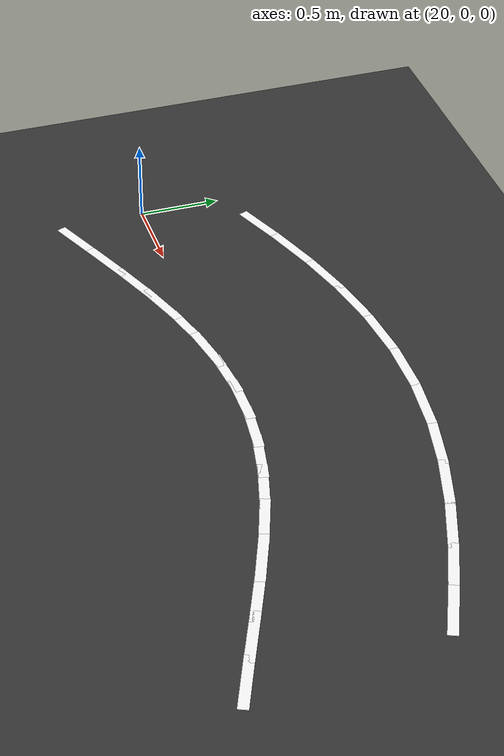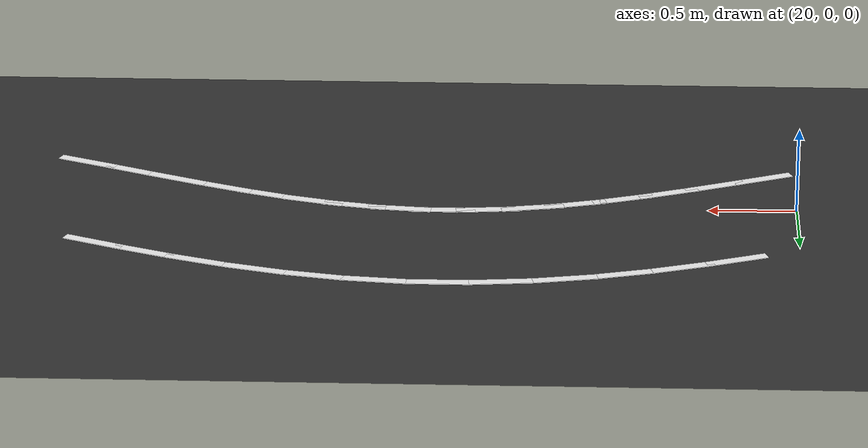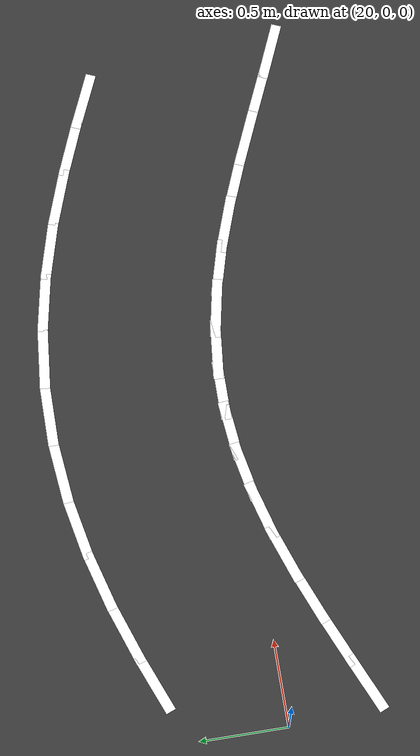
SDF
<sdf version="1.7">
 <world name="cone_lane">
  <model name="ground_plane">
   <static>true</static>
   <link name="link">
    <collision name="collision">
     <geometry><plane><normal>0 0 1</normal><size>150 150</size></plane></geometry>
     <surface><friction><ode><mu>1.0</mu></ode></friction></surface>
    </collision>
    <visual name="visual">
     <geometry><plane><normal>0 0 1</normal><size>100 100</size></plane></geometry>
     <material>
      <ambient>0.16 0.16 0.16 1</ambient>
      <diffuse>0.20 0.20 0.20 1</diffuse>
      <specular>0.02 0.02 0.02 1</specular>
     </material>
    </visual>
   </link>
  </model>
  <model name="line_L072">
   <static>true</static>
   <pose>20.357 0.692 0.0030 0 0 0.3750</pose>
   <link name="link">
    <visual name="v">
     <geometry><box><size>0.360 0.060 0.005</size></box></geometry>
     <material>
      <ambient>0.85 0.85 0.85 1</ambient>
      <diffuse>0.95 0.95 0.95 1</diffuse>
      <specular>0.1 0.1 0.1 1</specular>
     </material>
    </visual>
   </link>
  </model>
  <model name="line_L073">
   <static>true</static>
   <pose>20.657 0.803 0.0030 0 0 0.3326</pose>
   <link name="link">
    <visual name="v">
     <geometry><box><size>0.360 0.060 0.005</size></box></geometry>
     <material>
      <ambient>0.85 0.85 0.85 1</ambient>
      <diffuse>0.95 0.95 0.95 1</diffuse>
      <specular>0.1 0.1 0.1 1</specular>
     </material>
    </visual>
   </link>
  </model>
  <model name="line_L074">
   <static>true</static>
   <pose>20.987 0.906 0.0030 0 0 0.2687</pose>
   <link name="link">
    <visual name="v">
     <geometry><box><size>0.360 0.060 0.005</size></box></geometry>
     <material>
      <ambient>0.85 0.85 0.85 1</ambient>
      <diffuse>0.95 0.95 0.95 1</diffuse>
      <specular>0.1 0.1 0.1 1</specular>
     </material>
    </visual>
   </link>
  </model>
  <model name="line_L075">
   <static>true</static>
   <pose>21.304 0.981 0.0030 0 0 0.1936</pose>
   <link name="link">
    <visual name="v">
     <geometry><box><size>0.360 0.060 0.005</size></box></geometry>
     <material>
      <ambient>0.85 0.85 0.85 1</ambient>
      <diffuse>0.95 0.95 0.95 1</diffuse>
      <specular>0.1 0.1 0.1 1</specular>
     </material>
    </visual>
   </link>
  </model>
  <model name="line_L076">
   <static>true</static>
   <pose>21.650 1.032 0.0030 0 0 0.1005</pose>
   <link name="link">
    <visual name="v">
     <geometry><box><size>0.360 0.060 0.005</size></box></geometry>
     <material>
      <ambient>0.85 0.85 0.85 1</ambient>
      <diffuse>0.95 0.95 0.95 1</diffuse>
      <specular>0.1 0.1 0.1 1</specular>
     </material>
    </visual>
   </link>
  </model>
  <model name="line_L077">
   <static>true</static>
   <pose>22.000 1.050 0.0030 0 0 0.0000</pose>
   <link name="link">
    <visual name="v">
     <geometry><box><size>0.360 0.060 0.005</size></box></geometry>
     <material>
      <ambient>0.85 0.85 0.85 1</ambient>
      <diffuse>0.95 0.95 0.95 1</diffuse>
      <specular>0.1 0.1 0.1 1</specular>
     </material>
    </visual>
   </link>
  </model>
  <model name="line_L078">
   <static>true</static>
   <pose>22.350 1.032 0.0030 0 0 -0.1005</pose>
   <link name="link">
    <visual name="v">
     <geometry><box><size>0.360 0.060 0.005</size></box></geometry>
     <material>
      <ambient>0.85 0.85 0.85 1</ambient>
      <diffuse>0.95 0.95 0.95 1</diffuse>
      <specular>0.1 0.1 0.1 1</specular>
     </material>
    </visual>
   </link>
  </model>
  <model name="line_L079">
   <static>true</static>
   <pose>22.696 0.981 0.0030 0 0 -0.1936</pose>
   <link name="link">
    <visual name="v">
     <geometry><box><size>0.360 0.060 0.005</size></box></geometry>
     <material>
      <ambient>0.85 0.85 0.85 1</ambient>
      <diffuse>0.95 0.95 0.95 1</diffuse>
      <specular>0.1 0.1 0.1 1</specular>
     </material>
    </visual>
   </link>
  </model>
  <model name="line_L080">
   <static>true</static>
   <pose>23.013 0.906 0.0030 0 0 -0.2687</pose>
   <link name="link">
    <visual name="v">
     <geometry><box><size>0.360 0.060 0.005</size></box></geometry>
     <material>
      <ambient>0.85 0.85 0.85 1</ambient>
      <diffuse>0.95 0.95 0.95 1</diffuse>
      <specular>0.1 0.1 0.1 1</specular>
     </material>
    </visual>
   </link>
  </model>
  <model name="line_L081">
   <static>true</static>
   <pose>23.343 0.803 0.0030 0 0 -0.3326</pose>
   <link name="link">
    <visual name="v">
     <geometry><box><size>0.360 0.060 0.005</size></box></geometry>
     <material>
      <ambient>0.85 0.85 0.85 1</ambient>
      <diffuse>0.95 0.95 0.95 1</diffuse>
      <specular>0.1 0.1 0.1 1</specular>
     </material>
    </visual>
   </link>
  </model>
  <model name="line_L082">
   <static>true</static>
   <pose>23.643 0.692 0.0030 0 0 -0.3750</pose>
   <link name="link">
    <visual name="v">
     <geometry><box><size>0.360 0.060 0.005</size></box></geometry>
     <material>
      <ambient>0.85 0.85 0.85 1</ambient>
      <diffuse>0.95 0.95 0.95 1</diffuse>
      <specular>0.1 0.1 0.1 1</specular>
     </material>
    </visual>
   </link>
  </model>
  <model name="line_L083">
   <static>true</static>
   <pose>23.935 0.572 0.0030 0 0 -0.4002</pose>
   <link name="link">
    <visual name="v">
     <geometry><box><size>0.360 0.060 0.005</size></box></geometry>
     <material>
      <ambient>0.85 0.85 0.85 1</ambient>
      <diffuse>0.95 0.95 0.95 1</diffuse>
      <specular>0.1 0.1 0.1 1</specular>
     </material>
    </visual>
   </link>
  </model>
  <model name="line_R070">
   <static>true</static>
   <pose>20.178 -0.468 0.0030 0 0 0.4077</pose>
   <link name="link">
    <visual name="v">
     <geometry><box><size>0.360 0.060 0.005</size></box></geometry>
     <material>
      <ambient>0.85 0.85 0.85 1</ambient>
      <diffuse>0.95 0.95 0.95 1</diffuse>
      <specular>0.1 0.1 0.1 1</specular>
     </material>
    </visual>
   </link>
  </model>
  <model name="line_R071">
   <static>true</static>
   <pose>20.455 -0.349 0.0030 0 0 0.4002</pose>
   <link name="link">
    <visual name="v">
     <geometry><box><size>0.360 0.060 0.005</size></box></geometry>
     <material>
      <ambient>0.85 0.85 0.85 1</ambient>
      <diffuse>0.95 0.95 0.95 1</diffuse>
      <specular>0.1 0.1 0.1 1</specular>
     </material>
    </visual>
   </link>
  </model>
  <model name="line_R072">
   <static>true</static>
   <pose>20.723 -0.239 0.0030 0 0 0.3750</pose>
   <link name="link">
    <visual name="v">
     <geometry><box><size>0.360 0.060 0.005</size></box></geometry>
     <material>
      <ambient>0.85 0.85 0.85 1</ambient>
      <diffuse>0.95 0.95 0.95 1</diffuse>
      <specular>0.1 0.1 0.1 1</specular>
     </material>
    </visual>
   </link>
  </model>
  <model name="line_R073">
   <static>true</static>
   <pose>20.983 -0.142 0.0030 0 0 0.3326</pose>
   <link name="link">
    <visual name="v">
     <geometry><box><size>0.360 0.060 0.005</size></box></geometry>
     <material>
      <ambient>0.85 0.85 0.85 1</ambient>
      <diffuse>0.95 0.95 0.95 1</diffuse>
      <specular>0.1 0.1 0.1 1</specular>
     </material>
    </visual>
   </link>
  </model>
  <model name="line_R074">
   <static>true</static>
   <pose>21.253 -0.058 0.0030 0 0 0.2687</pose>
   <link name="link">
    <visual name="v">
     <geometry><box><size>0.360 0.060 0.005</size></box></geometry>
     <material>
      <ambient>0.85 0.85 0.85 1</ambient>
      <diffuse>0.95 0.95 0.95 1</diffuse>
      <specular>0.1 0.1 0.1 1</specular>
     </material>
    </visual>
   </link>
  </model>
  <model name="line_R075">
   <static>true</static>
   <pose>21.496 -0.001 0.0030 0 0 0.1936</pose>
   <link name="link">
    <visual name="v">
     <geometry><box><size>0.360 0.060 0.005</size></box></geometry>
     <material>
      <ambient>0.85 0.85 0.85 1</ambient>
      <diffuse>0.95 0.95 0.95 1</diffuse>
      <specular>0.1 0.1 0.1 1</specular>
     </material>
    </visual>
   </link>
  </model>
  <model name="line_R076">
   <static>true</static>
   <pose>21.750 0.037 0.0030 0 0 0.1005</pose>
   <link name="link">
    <visual name="v">
     <geometry><box><size>0.360 0.060 0.005</size></box></geometry>
     <material>
      <ambient>0.85 0.85 0.85 1</ambient>
      <diffuse>0.95 0.95 0.95 1</diffuse>
      <specular>0.1 0.1 0.1 1</specular>
     </material>
    </visual>
   </link>
  </model>
  <model name="line_R077">
   <static>true</static>
   <pose>22.000 0.050 0.0030 0 0 0.0000</pose>
   <link name="link">
    <visual name="v">
     <geometry><box><size>0.360 0.060 0.005</size></box></geometry>
     <material>
      <ambient>0.85 0.85 0.85 1</ambient>
      <diffuse>0.95 0.95 0.95 1</diffuse>
      <specular>0.1 0.1 0.1 1</specular>
     </material>
    </visual>
   </link>
  </model>
  <model name="line_R078">
   <static>true</static>
   <pose>22.250 0.037 0.0030 0 0 -0.1005</pose>
   <link name="link">
    <visual name="v">
     <geometry><box><size>0.360 0.060 0.005</size></box></geometry>
     <material>
      <ambient>0.85 0.85 0.85 1</ambient>
      <diffuse>0.95 0.95 0.95 1</diffuse>
      <specular>0.1 0.1 0.1 1</specular>
     </material>
    </visual>
   </link>
  </model>
  <model name="line_R079">
   <static>true</static>
   <pose>22.504 -0.001 0.0030 0 0 -0.1936</pose>
   <link name="link">
    <visual name="v">
     <geometry><box><size>0.360 0.060 0.005</size></box></geometry>
     <material>
      <ambient>0.85 0.85 0.85 1</ambient>
      <diffuse>0.95 0.95 0.95 1</diffuse>
      <specular>0.1 0.1 0.1 1</specular>
     </material>
    </visual>
   </link>
  </model>
  <model name="line_R080">
   <static>true</static>
   <pose>22.747 -0.058 0.0030 0 0 -0.2687</pose>
   <link name="link">
    <visual name="v">
     <geometry><box><size>0.360 0.060 0.005</size></box></geometry>
     <material>
      <ambient>0.85 0.85 0.85 1</ambient>
      <diffuse>0.95 0.95 0.95 1</diffuse>
      <specular>0.1 0.1 0.1 1</specular>
     </material>
    </visual>
   </link>
  </model>
  <model name="line_R081">
   <static>true</static>
   <pose>23.017 -0.142 0.0030 0 0 -0.3326</pose>
   <link name="link">
    <visual name="v">
     <geometry><box><size>0.360 0.060 0.005</size></box></geometry>
     <material>
      <ambient>0.85 0.85 0.85 1</ambient>
      <diffuse>0.95 0.95 0.95 1</diffuse>
      <specular>0.1 0.1 0.1 1</specular>
     </material>
    </visual>
   </link>
  </model>
  <model name="line_R082">
   <static>true</static>
   <pose>23.277 -0.239 0.0030 0 0 -0.3750</pose>
   <link name="link">
    <visual name="v">
     <geometry><box><size>0.360 0.060 0.005</size></box></geometry>
     <material>
      <ambient>0.85 0.85 0.85 1</ambient>
      <diffuse>0.95 0.95 0.95 1</diffuse>
      <specular>0.1 0.1 0.1 1</specular>
     </material>
    </visual>
   </link>
  </model>
  <model name="line_R083">
   <static>true</static>
   <pose>23.545 -0.349 0.0030 0 0 -0.4002</pose>
   <link name="link">
    <visual name="v">
     <geometry><box><size>0.360 0.060 0.005</size></box></geometry>
     <material>
      <ambient>0.85 0.85 0.85 1</ambient>
      <diffuse>0.95 0.95 0.95 1</diffuse>
      <specular>0.1 0.1 0.1 1</specular>
     </material>
    </visual>
   </link>
  </model>
  <model name="line_R084">
   <static>true</static>
   <pose>23.802 -0.459 0.0030 0 0 -0.4077</pose>
   <link name="link">
    <visual name="v">
     <geometry><box><size>0.360 0.060 0.005</size></box></geometry>
     <material>
      <ambient>0.85 0.85 0.85 1</ambient>
      <diffuse>0.95 0.95 0.95 1</diffuse>
      <specular>0.1 0.1 0.1 1</specular>
     </material>
    </visual>
   </link>
  </model>
  <model name="line_R085">
   <static>true</static>
   <pose>24.086 -0.581 0.0030 0 0 -0.3989</pose>
   <link name="link">
    <visual name="v">
     <geometry><box><size>0.360 0.060 0.005</size></box></geometry>
     <material>
      <ambient>0.85 0.85 0.85 1</ambient>
      <diffuse>0.95 0.95 0.95 1</diffuse>
      <specular>0.1 0.1 0.1 1</specular>
     </material>
    </visual>
   </link>
  </model>
 </world>
</sdf>
